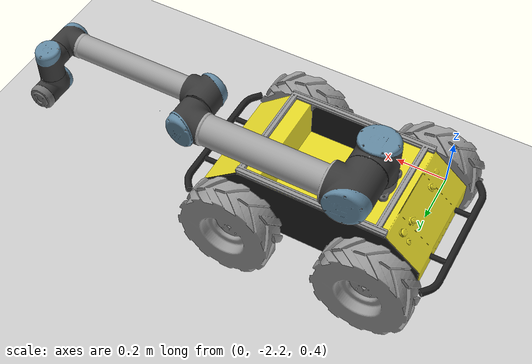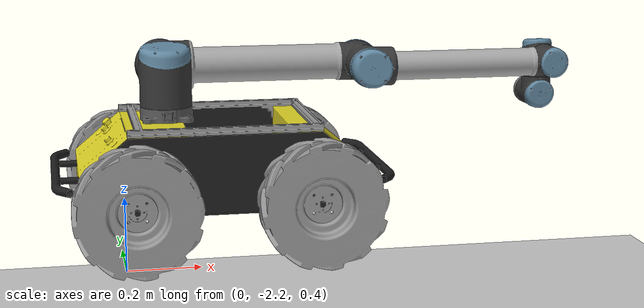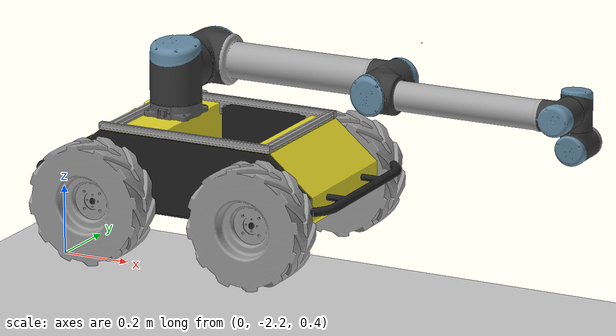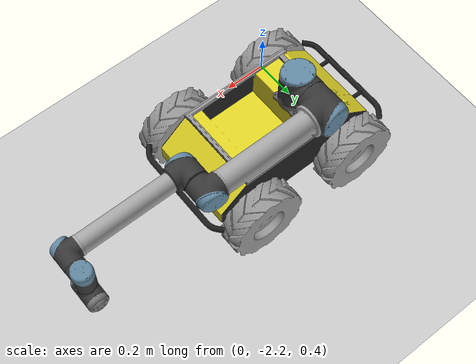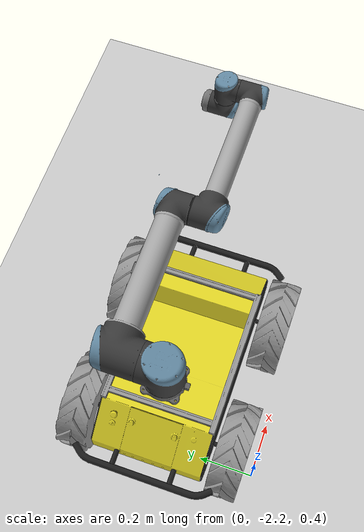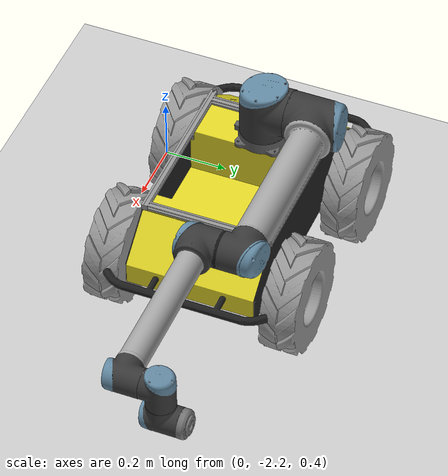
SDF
<sdf version="1.6">
 <world name="default">
  <light name="sun" type="directional">
   <pose>0 0 10 0 -0 0</pose>
   <diffuse>0.8 0.8 0.8 1</diffuse>
   <specular>0.2 0.2 0.2 1</specular>
   <attenuation>
    <range>1000</range>
    <constant>0.9</constant>
    <linear>0.01</linear>
    <quadratic>0.001</quadratic>
   </attenuation>
   <direction>-0.5 0.1 -0.9</direction>
  </light>
  <model name="ground_plane">
   <static>1</static>
   <link name="link">
    <collision name="collision">
     <geometry><plane><normal>0 0 1</normal><size>100 100</size></plane></geometry>
     <surface>
      <contact><collide_bitmask>65535</collide_bitmask></contact>
      <friction><ode><mu>100</mu><mu2>50</mu2></ode></friction>
     </surface>
    </collision>
    <visual name="visual">
     <cast_shadows>0</cast_shadows>
     <geometry><plane><normal>0 0 1</normal><size>100 100</size></plane></geometry>
     <material>
      <script><uri>file://media/materials/scripts/gazebo.material</uri><name>Gazebo/Grey</name></script>
     </material>
    </visual>
   </link>
  </model>
  <gravity>0 0 -9.8</gravity>
  <magnetic_field>6e-06 2.3e-05 -4.2e-05</magnetic_field>
  <atmosphere type="adiabatic"/>
  <physics name="default_physics" default="0" type="ode">
   <max_step_size>0.001</max_step_size>
   <real_time_factor>1</real_time_factor>
   <real_time_update_rate>1000</real_time_update_rate>
  </physics>
  <scene><ambient>0.4 0.4 0.4 1</ambient><background>0.7 0.7 0.7 1</background><shadows>1</shadows></scene>
  <audio><device>default</device></audio>
  <spherical_coordinates>
   <surface_model>EARTH_WGS84</surface_model>
   <latitude_deg>0</latitude_deg>
   <longitude_deg>0</longitude_deg>
   <elevation>0</elevation>
   <heading_deg>0</heading_deg>
  </spherical_coordinates>
  <model name="husky_ur10_0">
   <model name="husky">
    <pose>0.073478 -0.007966 -0.116875 0 -0 0</pose>
    <link name="base_link">
     <collision name="collision">
      <pose>0 0 0.1 0 -0 0</pose>
      <geometry><box><size>1.0074 0.5709 0.2675</size></box></geometry>
     </collision>
     <inertial>
      <mass>33.855</mass>
      <pose>-0.085613 -0.00084 0.238145 0 -0 0</pose>
      <inertia>
       <ixx>2.2343</ixx>
       <ixy>-0.023642</ixy>
       <ixz>0.275174</ixz>
       <iyy>3.42518</iyy>
       <iyz>0.00239624</iyz>
       <izz>2.1241</izz>
      </inertia>
     </inertial>
     <visual name="base">
      <geometry><mesh><uri>model://husky/meshes/base_link.stl</uri></mesh></geometry>
      <material><script><name>Gazebo/FlatBlack</name><uri>__default__</uri></script></material>
     </visual>
     <visual name="top_plate">
      <geometry><mesh><uri>model://husky/meshes/top_plate.stl</uri></mesh></geometry>
      <material><script><name>Gazebo/Yellow</name><uri>__default__</uri></script></material>
     </visual>
     <visual name="front_bumper">
      <pose>0.47 0 0.091 0 -0 0</pose>
      <geometry><mesh><uri>model://husky/meshes/bumper.stl</uri></mesh></geometry>
      <material><script><name>Gazebo/FlatBlack</name><uri>__default__</uri></script></material>
     </visual>
     <visual name="rear_bumper">
      <pose>-0.47 0 0.091 0 -0 3.141</pose>
      <geometry><mesh><uri>model://husky/meshes/bumper.stl</uri></mesh></geometry>
      <material><script><name>Gazebo/FlatBlack</name><uri>__default__</uri></script></material>
     </visual>
     <visual name="user_rail">
      <pose>0.272 0 0.245 0 -0 0</pose>
      <geometry><mesh><uri>model://husky/meshes/user_rail.stl</uri></mesh></geometry>
      <material><script><name>Gazebo/Grey</name><uri>__default__</uri></script></material>
     </visual>
    </link>
    <link name="back_left_wheel">
     <pose>-0.256 0.285475 0.035 0 -0 0</pose>
     <inertial>
      <mass>2.6357</mass>
      <inertia>
       <ixx>0.0246688</ixx>
       <ixy>0</ixy>
       <ixz>0</ixz>
       <iyy>0.0246688</iyy>
       <iyz>0</iyz>
       <izz>0.0441058</izz>
      </inertia>
     </inertial>
     <collision name="back_left_wheel_collision">
      <pose>0 0 0 -1.5707 0 0</pose>
      <geometry><cylinder><radius>0.17775</radius><length>0.1143</length></cylinder></geometry>
      <surface>
       <friction><ode><mu>100000</mu><mu2>100000</mu2><slip1>0</slip1><slip2>0</slip2></ode></friction>
      </surface>
     </collision>
     <visual name="back_left_wheel">
      <pose>0 0 0 -3.14159 0 0</pose>
      <geometry><mesh><uri>model://husky/meshes/wheel.stl</uri></mesh></geometry>
      <material><script><name>Gazebo/Grey</name><uri>__default__</uri></script></material>
     </visual>
    </link>
    <joint name="back_left_joint" type="revolute">
     <parent>base_link</parent>
     <child>back_left_wheel</child>
     <axis>
      <xyz>0 1 0</xyz>
      <use_parent_model_frame>1</use_parent_model_frame>
      <limit><lower>-1e+16</lower><upper>1e+16</upper></limit>
      <dynamics><spring_reference>0</spring_reference><spring_stiffness>0</spring_stiffness></dynamics>
     </axis>
     <physics><ode><limit><cfm>0</cfm><erp>0.9</erp></limit></ode></physics>
    </joint>
    <link name="back_right_wheel">
     <pose>-0.256 -0.285475 0.035 0 -0 0</pose>
     <inertial>
      <mass>2.6357</mass>
      <inertia>
       <ixx>0.0246688</ixx>
       <ixy>0</ixy>
       <ixz>0</ixz>
       <iyy>0.0246688</iyy>
       <iyz>0</iyz>
       <izz>0.0441058</izz>
      </inertia>
     </inertial>
     <collision name="back_right_wheel_collision">
      <pose>0 0 0 -1.5707 0 0</pose>
      <geometry><cylinder><radius>0.17775</radius><length>0.1143</length></cylinder></geometry>
      <surface>
       <friction><ode><mu>100000</mu><mu2>100000</mu2><slip1>0</slip1><slip2>0</slip2></ode></friction>
      </surface>
     </collision>
     <visual name="back_right_wheel">
      <pose>0 0 0 -3.14159 0 0</pose>
      <geometry><mesh><uri>model://husky/meshes/wheel.stl</uri></mesh></geometry>
      <material><script><name>Gazebo/Grey</name><uri>__default__</uri></script></material>
     </visual>
    </link>
    <joint name="back_right_joint" type="revolute">
     <parent>base_link</parent>
     <child>back_right_wheel</child>
     <axis>
      <xyz>0 1 0</xyz>
      <use_parent_model_frame>1</use_parent_model_frame>
      <limit><lower>-1e+16</lower><upper>1e+16</upper></limit>
      <dynamics><spring_reference>0</spring_reference><spring_stiffness>0</spring_stiffness></dynamics>
     </axis>
     <physics><ode><limit><cfm>0</cfm><erp>0.9</erp></limit></ode></physics>
    </joint>
    <link name="front_left_wheel">
     <pose>0.256 0.285475 0.035 0 -0 0</pose>
     <inertial>
      <mass>2.6357</mass>
      <inertia>
       <ixx>0.0246688</ixx>
       <ixy>0</ixy>
       <ixz>0</ixz>
       <iyy>0.0246688</iyy>
       <iyz>0</iyz>
       <izz>0.0441058</izz>
      </inertia>
     </inertial>
     <collision name="front_left_wheel_collision">
      <pose>0 0 0 -1.5707 0 0</pose>
      <geometry><cylinder><radius>0.17775</radius><length>0.1143</length></cylinder></geometry>
      <surface>
       <friction><ode><mu>100000</mu><mu2>100000</mu2><slip1>0</slip1><slip2>0</slip2></ode></friction>
      </surface>
     </collision>
     <visual name="front_left_wheel">
      <pose>0 0 0 -3.14159 0 0</pose>
      <geometry><mesh><uri>model://husky/meshes/wheel.stl</uri></mesh></geometry>
      <material><script><name>Gazebo/Grey</name><uri>__default__</uri></script></material>
     </visual>
    </link>
    <joint name="front_left_joint" type="revolute">
     <parent>base_link</parent>
     <child>front_left_wheel</child>
     <axis>
      <xyz>0 1 0</xyz>
      <use_parent_model_frame>1</use_parent_model_frame>
      <limit><lower>-1e+16</lower><upper>1e+16</upper></limit>
      <dynamics><spring_reference>0</spring_reference><spring_stiffness>0</spring_stiffness></dynamics>
     </axis>
     <physics><ode><limit><cfm>0</cfm><erp>0.9</erp></limit></ode></physics>
    </joint>
    <link name="front_right_wheel">
     <pose>0.256 -0.285475 0.035 0 -0 0</pose>
     <inertial>
      <mass>2.6357</mass>
      <inertia>
       <ixx>0.0246688</ixx>
       <ixy>0</ixy>
       <ixz>0</ixz>
       <iyy>0.0246688</iyy>
       <iyz>0</iyz>
       <izz>0.0441058</izz>
      </inertia>
     </inertial>
     <collision name="front_right_wheel_collision">
      <pose>0 0 0 -1.5707 0 0</pose>
      <geometry><cylinder><radius>0.17775</radius><length>0.1143</length></cylinder></geometry>
      <surface>
       <friction><ode><mu>100000</mu><mu2>100000</mu2><slip1>0</slip1><slip2>0</slip2></ode></friction>
      </surface>
     </collision>
     <visual name="front_right_wheel">
      <pose>0 0 0 -3.14159 0 0</pose>
      <geometry><mesh><uri>model://husky/meshes/wheel.stl</uri></mesh></geometry>
      <material><script><name>Gazebo/Grey</name><uri>__default__</uri></script></material>
     </visual>
    </link>
    <joint name="front_right_joint" type="revolute">
     <parent>base_link</parent>
     <child>front_right_wheel</child>
     <axis>
      <xyz>0 1 0</xyz>
      <use_parent_model_frame>1</use_parent_model_frame>
      <limit><lower>-1e+16</lower><upper>1e+16</upper></limit>
      <dynamics><spring_reference>0</spring_reference><spring_stiffness>0</spring_stiffness></dynamics>
     </axis>
     <physics><ode><limit><cfm>0</cfm><erp>0.9</erp></limit></ode></physics>
    </joint>
    <plugin name="husky_diff_controller" filename="libhusky_gazebo_plugins.so">
     <alwaysOn>1</alwaysOn>
     <updateRate>100.0</updateRate>
     <backLeftJoint>back_left_joint</backLeftJoint>
     <backRightJoint>back_right_joint</backRightJoint>
     <frontLeftJoint>front_left_joint</frontLeftJoint>
     <frontRightJoint>front_right_joint</frontRightJoint>
     <wheelSeparation>0.5709</wheelSeparation>
     <wheelDiameter>0.3555</wheelDiameter>
     <torque>35</torque>
    </plugin>
   </model>
   <model name="ur10">
    <link name="base">
     <inertial>
      <mass>4</mass>
      <inertia>
       <ixx>0.00610633</ixx>
       <ixy>0</ixy>
       <ixz>0</ixz>
       <iyy>0.00610633</iyy>
       <iyz>0</iyz>
       <izz>0.01125</izz>
      </inertia>
     </inertial>
     <collision name="collision">
      <pose>0 0 0.019 0 -0 0</pose>
      <geometry><cylinder><radius>0.075</radius><length>0.038</length></cylinder></geometry>
     </collision>
     <visual name="visual"><geometry><mesh><uri>model://ur10/meshes/base.dae</uri></mesh></geometry></visual>
    </link>
    <link name="shoulder">
     <pose>0 0 0.1273 0 -0 0</pose>
     <inertial>
      <mass>7.778</mass>
      <inertia>
       <ixx>0.0314743</ixx>
       <ixy>0</ixy>
       <ixz>0</ixz>
       <iyy>0.0314743</iyy>
       <iyz>0</iyz>
       <izz>0.0218756</izz>
      </inertia>
     </inertial>
     <collision name="collision">
      <geometry><cylinder><radius>0.075</radius><length>0.177</length></cylinder></geometry>
     </collision>
     <visual name="visual"><geometry><mesh><uri>model://ur10/meshes/shoulder.dae</uri></mesh></geometry></visual>
    </link>
    <link name="upper_arm">
     <pose>0 0.220941 0.1273 3.14159 1.57079 3.14159</pose>
     <inertial>
      <pose>0 0 0.306 0 -0 0</pose>
      <mass>12.93</mass>
      <inertia>
       <ixx>0.421754</ixx>
       <ixy>0</ixy>
       <ixz>0</ixz>
       <iyy>0.421754</iyy>
       <iyz>0</iyz>
       <izz>0.0363656</izz>
      </inertia>
     </inertial>
     <collision name="collision1">
      <pose>0 -0.045 0 1.5707 -0 0</pose>
      <geometry><cylinder><radius>0.075</radius><length>0.177</length></cylinder></geometry>
     </collision>
     <collision name="collision2">
      <pose>0 -0.0436 0.32 0 -0 1.5707</pose>
      <geometry><cylinder><radius>0.058</radius><length>0.461</length></cylinder></geometry>
     </collision>
     <collision name="collision3">
      <pose>0 -0.04 0.613 1.5707 -0 0</pose>
      <geometry><cylinder><radius>0.058</radius><length>0.129</length></cylinder></geometry>
     </collision>
     <visual name="visual"><geometry><mesh><uri>model://ur10/meshes/upperarm.dae</uri></mesh></geometry></visual>
    </link>
    <link name="forearm">
     <pose>0.612 0.049041 0.1273 3.14159 1.57079 3.14159</pose>
     <inertial>
      <pose>0 0 0.28615 0 -0 0</pose>
      <mass>3.87</mass>
      <inertia>
       <ixx>0.11107</ixx>
       <ixy>0</ixy>
       <ixz>0</ixz>
       <iyy>0.11107</iyy>
       <iyz>0</iyz>
       <izz>0.0108844</izz>
      </inertia>
     </inertial>
     <collision name="collision1">
      <pose>0 0 0.001 1.5707 -0 0</pose>
      <geometry><cylinder><radius>0.058</radius><length>0.136</length></cylinder></geometry>
     </collision>
     <collision name="collision2">
      <pose>0 0 0.305 0 -0 1.5707</pose>
      <geometry><cylinder><radius>0.045</radius><length>0.447</length></cylinder></geometry>
     </collision>
     <collision name="collision3">
      <pose>0 0.001 0.5735 1.5707 -0 0</pose>
      <geometry><cylinder><radius>0.045</radius><length>0.119</length></cylinder></geometry>
     </collision>
     <visual name="visua"><geometry><mesh><uri>model://ur10/meshes/forearm.dae</uri></mesh></geometry></visual>
    </link>
    <link name="wrist_1">
     <pose>1.1843 0.049041 0.1273 3.14159 -0 3.14159</pose>
     <inertial>
      <mass>1.96</mass>
      <inertia>
       <ixx>0.00510825</ixx>
       <ixy>0</ixy>
       <ixz>0</ixz>
       <iyy>0.00510825</iyy>
       <iyz>0</iyz>
       <izz>0.0055125</izz>
      </inertia>
     </inertial>
     <collision name="collision">
      <pose>0 0.115 0.0025 0 -0 0</pose>
      <geometry><cylinder><radius>0.0455</radius><length>0.119</length></cylinder></geometry>
     </collision>
     <visual name="visual"><geometry><mesh><uri>model://ur10/meshes/wrist1.dae</uri></mesh></geometry></visual>
    </link>
    <link name="wrist_2">
     <pose>1.1843 0.163941 0.1273 3.14159 -0 3.14159</pose>
     <inertial>
      <mass>1.96</mass>
      <inertia>
       <ixx>0.00510825</ixx>
       <ixy>0</ixy>
       <ixz>0</ixz>
       <iyy>0.00510825</iyy>
       <iyz>0</iyz>
       <izz>0.0055125</izz>
      </inertia>
     </inertial>
     <collision name="collision">
      <pose>0 0.002 0.11659 1.5707 -0 0</pose>
      <geometry><cylinder><radius>0.0455</radius><length>0.119</length></cylinder></geometry>
     </collision>
     <visual name="visual"><geometry><mesh><uri>model://ur10/meshes/wrist2.dae</uri></mesh></geometry></visual>
    </link>
    <link name="wrist_3">
     <pose>1.1843 0.163941 0.0116 3.14159 -0 3.14159</pose>
     <inertial>
      <mass>0.202</mass>
      <inertia>
       <ixx>0.000526462</ixx>
       <ixy>0</ixy>
       <ixz>0</ixz>
       <iyy>0.000526462</iyy>
       <iyz>0</iyz>
       <izz>0.000568125</izz>
      </inertia>
     </inertial>
     <collision name="collision">
      <pose>0 0.0765 0 1.5707 -0 0</pose>
      <geometry><cylinder><radius>0.045</radius><length>0.031</length></cylinder></geometry>
     </collision>
     <visual name="visual"><geometry><mesh><uri>model://ur10/meshes/wrist3.dae</uri></mesh></geometry></visual>
    </link>
    <joint name="shoulder_pan" type="revolute">
     <child>shoulder</child>
     <parent>base</parent>
     <axis>
      <xyz>0 0 1</xyz>
      <limit><lower>-6.28319</lower><upper>6.28319</upper><effort>330</effort><velocity>2.16</velocity></limit>
      <use_parent_model_frame>1</use_parent_model_frame>
      <dynamics><spring_reference>0</spring_reference><spring_stiffness>0</spring_stiffness></dynamics>
     </axis>
    </joint>
    <joint name="shoulder_lift" type="revolute">
     <child>upper_arm</child>
     <parent>shoulder</parent>
     <axis>
      <xyz>0 1 0</xyz>
      <limit><lower>-6.28319</lower><upper>6.28319</upper><effort>330</effort><velocity>2.16</velocity></limit>
      <use_parent_model_frame>1</use_parent_model_frame>
      <dynamics><spring_reference>0</spring_reference><spring_stiffness>0</spring_stiffness></dynamics>
     </axis>
    </joint>
    <joint name="elbow" type="revolute">
     <child>forearm</child>
     <parent>upper_arm</parent>
     <axis>
      <xyz>0 1 0</xyz>
      <limit><lower>-6.28319</lower><upper>6.28319</upper><effort>150</effort><velocity>3.15</velocity></limit>
      <use_parent_model_frame>1</use_parent_model_frame>
      <dynamics><spring_reference>0</spring_reference><spring_stiffness>0</spring_stiffness></dynamics>
     </axis>
    </joint>
    <joint name="wrist_1" type="revolute">
     <child>wrist_1</child>
     <parent>forearm</parent>
     <axis>
      <xyz>0 1 0</xyz>
      <limit><lower>-6.28319</lower><upper>6.28319</upper><effort>54</effort><velocity>3.2</velocity></limit>
      <use_parent_model_frame>1</use_parent_model_frame>
      <dynamics><spring_reference>0</spring_reference><spring_stiffness>0</spring_stiffness></dynamics>
     </axis>
    </joint>
    <joint name="wrist_2" type="revolute">
     <child>wrist_2</child>
     <parent>wrist_1</parent>
     <axis>
      <xyz>0 0 -1</xyz>
      <limit><lower>-6.28319</lower><upper>6.28319</upper><effort>54</effort><velocity>3.2</velocity></limit>
      <use_parent_model_frame>1</use_parent_model_frame>
      <dynamics><spring_reference>0</spring_reference><spring_stiffness>0</spring_stiffness></dynamics>
     </axis>
    </joint>
    <joint name="wrist_3" type="revolute">
     <child>wrist_3</child>
     <parent>wrist_2</parent>
     <axis>
      <xyz>0 1 0</xyz>
      <limit><lower>-6.28319</lower><upper>6.28319</upper><effort>54</effort><velocity>3.2</velocity></limit>
      <use_parent_model_frame>1</use_parent_model_frame>
      <dynamics><spring_reference>0</spring_reference><spring_stiffness>0</spring_stiffness></dynamics>
     </axis>
    </joint>
    <pose>-0.073478 0.007961 0.116875 0 -0 0</pose>
   </model>
   <joint name="base_link_JOINT_0" type="revolute">
    <parent>husky::base_link</parent>
    <child>ur10::base</child>
    <axis>
     <xyz>0 0 1</xyz>
     <use_parent_model_frame>0</use_parent_model_frame>
     <limit>
      <lower>-1.79769e+308</lower>
      <upper>1.79769e+308</upper>
      <effort>-1</effort>
      <velocity>-1</velocity>
     </limit>
     <dynamics>
      <spring_reference>0</spring_reference>
      <spring_stiffness>0</spring_stiffness>
      <damping>0</damping>
     </dynamics>
    </axis>
    <physics>
     <ode><limit><cfm>0</cfm><erp>0.2</erp></limit><suspension><cfm>0</cfm><erp>0.2</erp></suspension></ode>
    </physics>
   </joint>
   <static>0</static>
   <pose>0.221008 -1.81835 0.616875 0 -0 0</pose>
  </model>
 </world>
</sdf>
